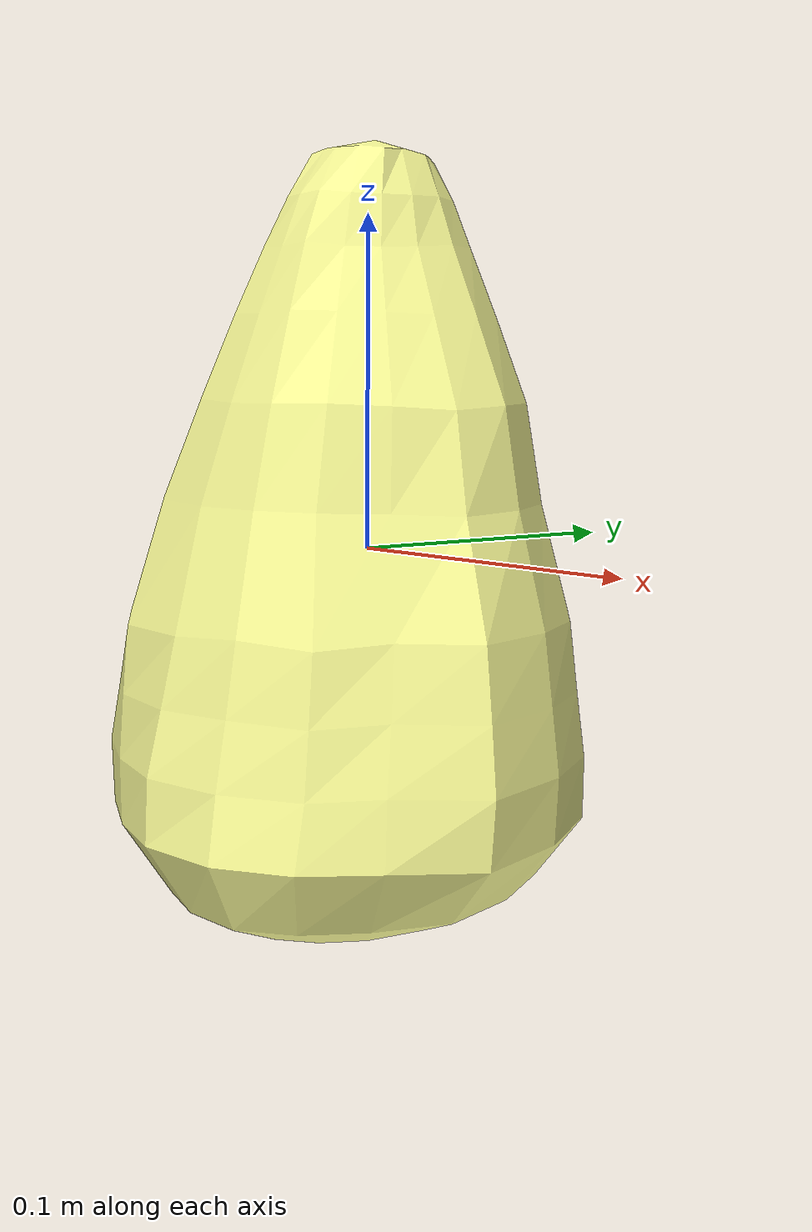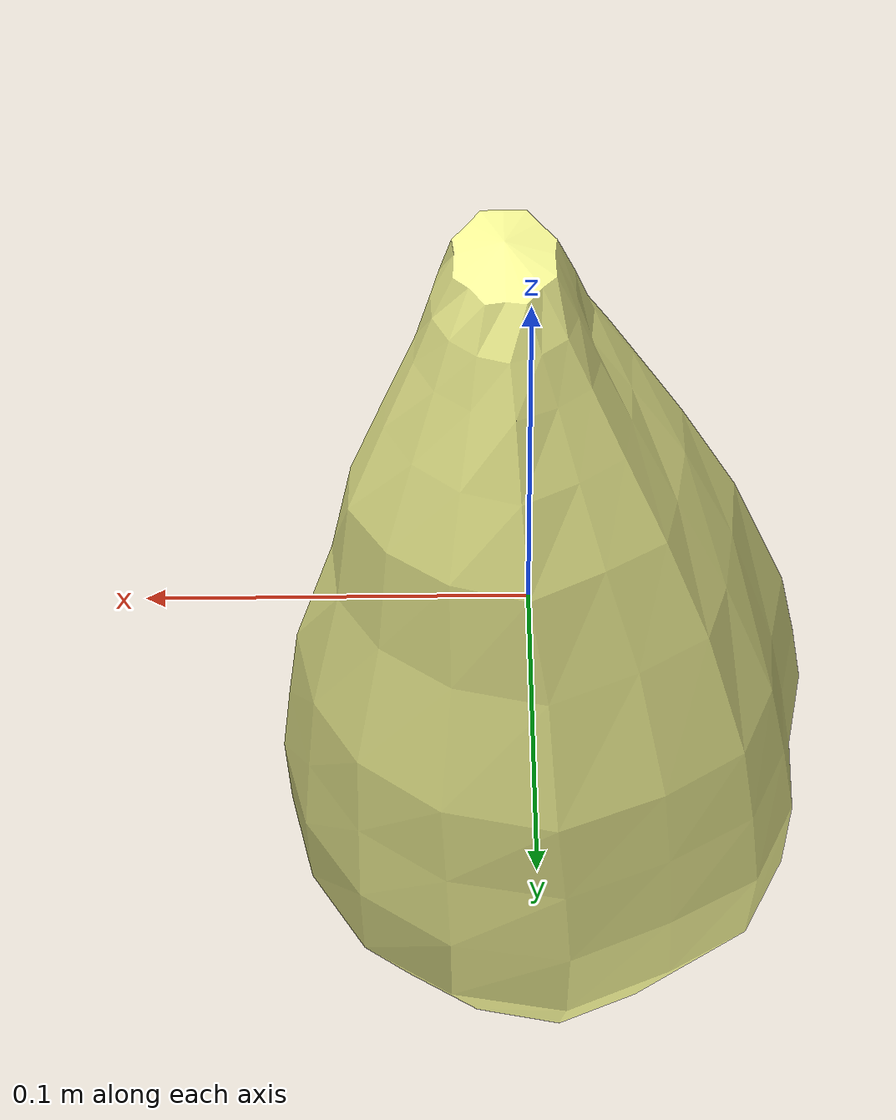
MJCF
<mujoco model="Lettuce_5">
  <default>
    <default class="visual">
      <geom group="2" type="mesh" contype="0" conaffinity="0"/>
    </default>
    <default class="collision">
      <geom group="3" type="mesh"/>
    </default>
  </default>
  <asset>
    <material name="Lettuce1_Mat" specular="0.5" shininess="0.5" rgba="0.9945233 1 0.6029412 1.0"/>
    <mesh file="Lettuce_5.obj"/>
    <mesh file="Lettuce_5_collision_0.obj"/>
  </asset>
  <worldbody>
    <body name="Lettuce_5">
      <geom material="Lettuce1_Mat" mesh="Lettuce_5" class="visual"/>
      <geom mesh="Lettuce_5_collision_0" rgba="0.07631605007373288 0.3454814013791012 0.5540321935826265 1" class="collision"/>
    </body>
  </worldbody>
</mujoco>
